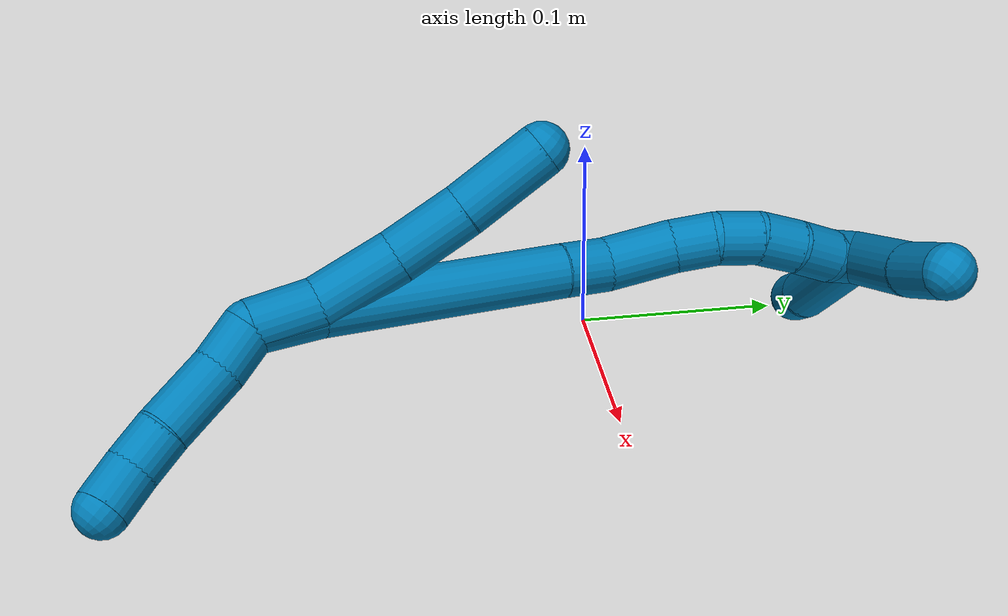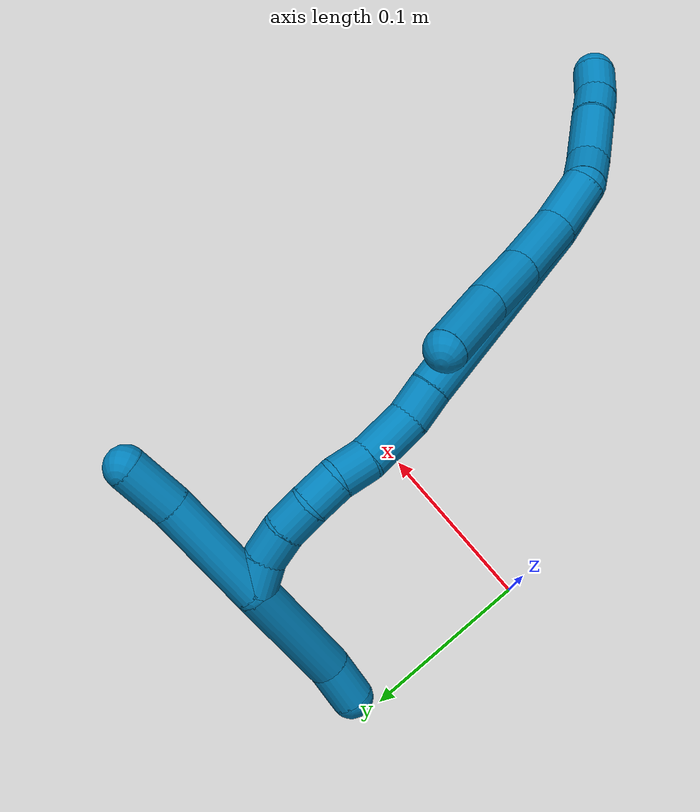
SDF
<sdf version="1.7">
 <world name="default">
  <model name="9">
   <static>0</static>
   <link name="9">
    <collision name="collision-cylinder-e_1_2_8">
     <pose>-0.006082 0.005342 0.013435 -0.37844 -0.398163 0.077238</pose>
     <geometry><cylinder><radius>0.0125</radius><length>0.031371</length></cylinder></geometry>
     <surface>
      <friction><ode><mu>1.16</mu><mu2>1.16</mu2><slip1>0</slip1><slip2>0</slip2></ode></friction>
      <contact><ode><kp>1e+06</kp><kd>1</kd><max_vel>0</max_vel><min_depth>0.001</min_depth></ode></contact>
     </surface>
    </collision>
    <visual name="visual-cylinder-e_1_2_8">
     <pose>-0.006082 0.005342 0.013435 -0.37844 -0.398163 0.077238</pose>
     <geometry><cylinder><radius>0.0125</radius><length>0.031371</length></cylinder></geometry>
     <material><ambient>0 0.490196 0.709804 1</ambient></material>
    </visual>
    <collision name="collision-cylinder-e_2_8_9">
     <pose>-0.013935 0.017314 0.045598 -0.340262 -0.08896 0.015292</pose>
     <geometry><cylinder><radius>0.0125</radius><length>0.03989</length></cylinder></geometry>
     <surface>
      <friction><ode><mu>1.16</mu><mu2>1.16</mu2><slip1>0</slip1><slip2>0</slip2></ode></friction>
      <contact><ode><kp>1e+06</kp><kd>1</kd><max_vel>0</max_vel><min_depth>0.001</min_depth></ode></contact>
     </surface>
    </collision>
    <visual name="visual-cylinder-e_2_8_9">
     <pose>-0.013935 0.017314 0.045598 -0.340262 -0.08896 0.015292</pose>
     <geometry><cylinder><radius>0.0125</radius><length>0.03989</length></cylinder></geometry>
     <material><ambient>0 0.490196 0.709804 1</ambient></material>
    </visual>
    <collision name="collision-cylinder-e_3_9_10">
     <pose>-0.015802 0.0299 0.081074 -0.341666 -0.00531 0.000916</pose>
     <geometry><cylinder><radius>0.0125</radius><length>0.035554</length></cylinder></geometry>
     <surface>
      <friction><ode><mu>1.16</mu><mu2>1.16</mu2><slip1>0</slip1><slip2>0</slip2></ode></friction>
      <contact><ode><kp>1e+06</kp><kd>1</kd><max_vel>0</max_vel><min_depth>0.001</min_depth></ode></contact>
     </surface>
    </collision>
    <visual name="visual-cylinder-e_3_9_10">
     <pose>-0.015802 0.0299 0.081074 -0.341666 -0.00531 0.000916</pose>
     <geometry><cylinder><radius>0.0125</radius><length>0.035554</length></cylinder></geometry>
     <material><ambient>0 0.490196 0.709804 1</ambient></material>
    </visual>
    <collision name="collision-cylinder-e_4_10_6">
     <pose>-0.015232 0.042127 0.118475 -0.294778 0.030767 -0.004568</pose>
     <geometry><cylinder><radius>0.0125</radius><length>0.043185</length></cylinder></geometry>
     <surface>
      <friction><ode><mu>1.16</mu><mu2>1.16</mu2><slip1>0</slip1><slip2>0</slip2></ode></friction>
      <contact><ode><kp>1e+06</kp><kd>1</kd><max_vel>0</max_vel><min_depth>0.001</min_depth></ode></contact>
     </surface>
    </collision>
    <visual name="visual-cylinder-e_4_10_6">
     <pose>-0.015232 0.042127 0.118475 -0.294778 0.030767 -0.004568</pose>
     <geometry><cylinder><radius>0.0125</radius><length>0.043185</length></cylinder></geometry>
     <material><ambient>0 0.490196 0.709804 1</ambient></material>
    </visual>
    <collision name="collision-cylinder-e_1_2_11">
     <pose>-0.000776 0.000504 -0.011164 -3.09644 -0.069366 1.98763</pose>
     <geometry><cylinder><radius>0.0125</radius><length>0.022404</length></cylinder></geometry>
     <surface>
      <friction><ode><mu>1.16</mu><mu2>1.16</mu2><slip1>0</slip1><slip2>0</slip2></ode></friction>
      <contact><ode><kp>1e+06</kp><kd>1</kd><max_vel>0</max_vel><min_depth>0.001</min_depth></ode></contact>
     </surface>
    </collision>
    <visual name="visual-cylinder-e_1_2_11">
     <pose>-0.000776 0.000504 -0.011164 -3.09644 -0.069366 1.98763</pose>
     <geometry><cylinder><radius>0.0125</radius><length>0.022404</length></cylinder></geometry>
     <material><ambient>0 0.490196 0.709804 1</ambient></material>
    </visual>
    <collision name="collision-cylinder-e_2_11_12">
     <pose>0.001242 0.002677 -0.039906 -3.04697 0.157001 -2.05797</pose>
     <geometry><cylinder><radius>0.0125</radius><length>0.035755</length></cylinder></geometry>
     <surface>
      <friction><ode><mu>1.16</mu><mu2>1.16</mu2><slip1>0</slip1><slip2>0</slip2></ode></friction>
      <contact><ode><kp>1e+06</kp><kd>1</kd><max_vel>0</max_vel><min_depth>0.001</min_depth></ode></contact>
     </surface>
    </collision>
    <visual name="visual-cylinder-e_2_11_12">
     <pose>0.001242 0.002677 -0.039906 -3.04697 0.157001 -2.05797</pose>
     <geometry><cylinder><radius>0.0125</radius><length>0.035755</length></cylinder></geometry>
     <material><ambient>0 0.490196 0.709804 1</ambient></material>
    </visual>
    <collision name="collision-cylinder-e_3_12_13">
     <pose>0.004496 0.005118 -0.067744 -3.06641 0.044528 -1.06919</pose>
     <geometry><cylinder><radius>0.0125</radius><length>0.020597</length></cylinder></geometry>
     <surface>
      <friction><ode><mu>1.16</mu><mu2>1.16</mu2><slip1>0</slip1><slip2>0</slip2></ode></friction>
      <contact><ode><kp>1e+06</kp><kd>1</kd><max_vel>0</max_vel><min_depth>0.001</min_depth></ode></contact>
     </surface>
    </collision>
    <visual name="visual-cylinder-e_3_12_13">
     <pose>0.004496 0.005118 -0.067744 -3.06641 0.044528 -1.06919</pose>
     <geometry><cylinder><radius>0.0125</radius><length>0.020597</length></cylinder></geometry>
     <material><ambient>0 0.490196 0.709804 1</ambient></material>
    </visual>
    <collision name="collision-cylinder-e_4_13_5">
     <pose>0.006371 0.00813 -0.088289 -2.92724 0.13379 -1.11386</pose>
     <geometry><cylinder><radius>0.0125</radius><length>0.021244</length></cylinder></geometry>
     <surface>
      <friction><ode><mu>1.16</mu><mu2>1.16</mu2><slip1>0</slip1><slip2>0</slip2></ode></friction>
      <contact><ode><kp>1e+06</kp><kd>1</kd><max_vel>0</max_vel><min_depth>0.001</min_depth></ode></contact>
     </surface>
    </collision>
    <visual name="visual-cylinder-e_4_13_5">
     <pose>0.006371 0.00813 -0.088289 -2.92724 0.13379 -1.11386</pose>
     <geometry><cylinder><radius>0.0125</radius><length>0.021244</length></cylinder></geometry>
     <material><ambient>0 0.490196 0.709804 1</ambient></material>
    </visual>
    <collision name="collision-cylinder-e_1_2_14">
     <pose>-0.007951 0.005282 0.013073 -0.383962 -0.513434 0.101962</pose>
     <geometry><cylinder><radius>0.0125</radius><length>0.032374</length></cylinder></geometry>
     <surface>
      <friction><ode><mu>1.16</mu><mu2>1.16</mu2><slip1>0</slip1><slip2>0</slip2></ode></friction>
      <contact><ode><kp>1e+06</kp><kd>1</kd><max_vel>0</max_vel><min_depth>0.001</min_depth></ode></contact>
     </surface>
    </collision>
    <visual name="visual-cylinder-e_1_2_14">
     <pose>-0.007951 0.005282 0.013073 -0.383962 -0.513434 0.101962</pose>
     <geometry><cylinder><radius>0.0125</radius><length>0.032374</length></cylinder></geometry>
     <material><ambient>0 0.490196 0.709804 1</ambient></material>
    </visual>
    <collision name="collision-cylinder-e_2_14_15">
     <pose>-0.043334 0.034532 0.069419 -0.505833 -0.506339 0.133535</pose>
     <geometry><cylinder><radius>0.0125</radius><length>0.113128</length></cylinder></geometry>
     <surface>
      <friction><ode><mu>1.16</mu><mu2>1.16</mu2><slip1>0</slip1><slip2>0</slip2></ode></friction>
      <contact><ode><kp>1e+06</kp><kd>1</kd><max_vel>0</max_vel><min_depth>0.001</min_depth></ode></contact>
     </surface>
    </collision>
    <visual name="visual-cylinder-e_2_14_15">
     <pose>-0.043334 0.034532 0.069419 -0.505833 -0.506339 0.133535</pose>
     <geometry><cylinder><radius>0.0125</radius><length>0.113128</length></cylinder></geometry>
     <material><ambient>0 0.490196 0.709804 1</ambient></material>
    </visual>
    <collision name="collision-cylinder-e_3_15_16">
     <pose>-0.076499 0.06265 0.12082 -0.471943 -0.560855 0.138287</pose>
     <geometry><cylinder><radius>0.0125</radius><length>0.021555</length></cylinder></geometry>
     <surface>
      <friction><ode><mu>1.16</mu><mu2>1.16</mu2><slip1>0</slip1><slip2>0</slip2></ode></friction>
      <contact><ode><kp>1e+06</kp><kd>1</kd><max_vel>0</max_vel><min_depth>0.001</min_depth></ode></contact>
     </surface>
    </collision>
    <visual name="visual-cylinder-e_3_15_16">
     <pose>-0.076499 0.06265 0.12082 -0.471943 -0.560855 0.138287</pose>
     <geometry><cylinder><radius>0.0125</radius><length>0.021555</length></cylinder></geometry>
     <material><ambient>0 0.490196 0.709804 1</ambient></material>
    </visual>
    <collision name="collision-cylinder-e_4_16_17">
     <pose>-0.087023 0.074872 0.142195 -0.547372 -0.299573 0.084683</pose>
     <geometry><cylinder><radius>0.0125</radius><length>0.032473</length></cylinder></geometry>
     <surface>
      <friction><ode><mu>1.16</mu><mu2>1.16</mu2><slip1>0</slip1><slip2>0</slip2></ode></friction>
      <contact><ode><kp>1e+06</kp><kd>1</kd><max_vel>0</max_vel><min_depth>0.001</min_depth></ode></contact>
     </surface>
    </collision>
    <visual name="visual-cylinder-e_4_16_17">
     <pose>-0.087023 0.074872 0.142195 -0.547372 -0.299573 0.084683</pose>
     <geometry><cylinder><radius>0.0125</radius><length>0.032473</length></cylinder></geometry>
     <material><ambient>0 0.490196 0.709804 1</ambient></material>
    </visual>
    <collision name="collision-cylinder-e_5_17_18">
     <pose>-0.09391 0.089466 0.16285 -0.721711 -0.209211 0.0792</pose>
     <geometry><cylinder><radius>0.0125</radius><length>0.020177</length></cylinder></geometry>
     <surface>
      <friction><ode><mu>1.16</mu><mu2>1.16</mu2><slip1>0</slip1><slip2>0</slip2></ode></friction>
      <contact><ode><kp>1e+06</kp><kd>1</kd><max_vel>0</max_vel><min_depth>0.001</min_depth></ode></contact>
     </surface>
    </collision>
    <visual name="visual-cylinder-e_5_17_18">
     <pose>-0.09391 0.089466 0.16285 -0.721711 -0.209211 0.0792</pose>
     <geometry><cylinder><radius>0.0125</radius><length>0.020177</length></cylinder></geometry>
     <material><ambient>0 0.490196 0.709804 1</ambient></material>
    </visual>
    <collision name="collision-cylinder-e_6_18_19">
     <pose>-0.100929 0.101608 0.176953 -0.698527 -0.512929 0.190434</pose>
     <geometry><cylinder><radius>0.0125</radius><length>0.020067</length></cylinder></geometry>
     <surface>
      <friction><ode><mu>1.16</mu><mu2>1.16</mu2><slip1>0</slip1><slip2>0</slip2></ode></friction>
      <contact><ode><kp>1e+06</kp><kd>1</kd><max_vel>0</max_vel><min_depth>0.001</min_depth></ode></contact>
     </surface>
    </collision>
    <visual name="visual-cylinder-e_6_18_19">
     <pose>-0.100929 0.101608 0.176953 -0.698527 -0.512929 0.190434</pose>
     <geometry><cylinder><radius>0.0125</radius><length>0.020067</length></cylinder></geometry>
     <material><ambient>0 0.490196 0.709804 1</ambient></material>
    </visual>
    <collision name="collision-cylinder-e_7_19_20">
     <pose>-0.112533 0.112835 0.188687 -0.838502 -0.725194 0.334984</pose>
     <geometry><cylinder><radius>0.0125</radius><length>0.020141</length></cylinder></geometry>
     <surface>
      <friction><ode><mu>1.16</mu><mu2>1.16</mu2><slip1>0</slip1><slip2>0</slip2></ode></friction>
      <contact><ode><kp>1e+06</kp><kd>1</kd><max_vel>0</max_vel><min_depth>0.001</min_depth></ode></contact>
     </surface>
    </collision>
    <visual name="visual-cylinder-e_7_19_20">
     <pose>-0.112533 0.112835 0.188687 -0.838502 -0.725194 0.334984</pose>
     <geometry><cylinder><radius>0.0125</radius><length>0.020141</length></cylinder></geometry>
     <material><ambient>0 0.490196 0.709804 1</ambient></material>
    </visual>
    <collision name="collision-cylinder-e_8_20_21">
     <pose>-0.127031 0.122526 0.198519 -0.705931 -0.892632 0.348981</pose>
     <geometry><cylinder><radius>0.0125</radius><length>0.02008</length></cylinder></geometry>
     <surface>
      <friction><ode><mu>1.16</mu><mu2>1.16</mu2><slip1>0</slip1><slip2>0</slip2></ode></friction>
      <contact><ode><kp>1e+06</kp><kd>1</kd><max_vel>0</max_vel><min_depth>0.001</min_depth></ode></contact>
     </surface>
    </collision>
    <visual name="visual-cylinder-e_8_20_21">
     <pose>-0.127031 0.122526 0.198519 -0.705931 -0.892632 0.348981</pose>
     <geometry><cylinder><radius>0.0125</radius><length>0.02008</length></cylinder></geometry>
     <material><ambient>0 0.490196 0.709804 1</ambient></material>
    </visual>
    <collision name="collision-cylinder-e_9_21_1">
     <pose>-0.14295 0.12775 0.209067 -0.1953 -0.944086 0.099943</pose>
     <geometry><cylinder><radius>0.0125</radius><length>0.020004</length></cylinder></geometry>
     <surface>
      <friction><ode><mu>1.16</mu><mu2>1.16</mu2><slip1>0</slip1><slip2>0</slip2></ode></friction>
      <contact><ode><kp>1e+06</kp><kd>1</kd><max_vel>0</max_vel><min_depth>0.001</min_depth></ode></contact>
     </surface>
    </collision>
    <visual name="visual-cylinder-e_9_21_1">
     <pose>-0.14295 0.12775 0.209067 -0.1953 -0.944086 0.099943</pose>
     <geometry><cylinder><radius>0.0125</radius><length>0.020004</length></cylinder></geometry>
     <material><ambient>0 0.490196 0.709804 1</ambient></material>
    </visual>
    <collision name="collision-cylinder-e_1_1_22">
     <pose>-0.129309 0.153781 0.209631 -1.77635 0.707434 -0.852643</pose>
     <geometry><cylinder><radius>0.0125</radius><length>0.066911</length></cylinder></geometry>
     <surface>
      <friction><ode><mu>1.16</mu><mu2>1.16</mu2><slip1>0</slip1><slip2>0</slip2></ode></friction>
      <contact><ode><kp>1e+06</kp><kd>1</kd><max_vel>0</max_vel><min_depth>0.001</min_depth></ode></contact>
     </surface>
    </collision>
    <visual name="visual-cylinder-e_1_1_22">
     <pose>-0.129309 0.153781 0.209631 -1.77635 0.707434 -0.852643</pose>
     <geometry><cylinder><radius>0.0125</radius><length>0.066911</length></cylinder></geometry>
     <material><ambient>0 0.490196 0.709804 1</ambient></material>
    </visual>
    <collision name="collision-cylinder-e_2_22_4">
     <pose>-0.096899 0.191291 0.203606 -1.63691 0.700767 -0.744511</pose>
     <geometry><cylinder><radius>0.0125</radius><length>0.033089</length></cylinder></geometry>
     <surface>
      <friction><ode><mu>1.16</mu><mu2>1.16</mu2><slip1>0</slip1><slip2>0</slip2></ode></friction>
      <contact><ode><kp>1e+06</kp><kd>1</kd><max_vel>0</max_vel><min_depth>0.001</min_depth></ode></contact>
     </surface>
    </collision>
    <visual name="visual-cylinder-e_2_22_4">
     <pose>-0.096899 0.191291 0.203606 -1.63691 0.700767 -0.744511</pose>
     <geometry><cylinder><radius>0.0125</radius><length>0.033089</length></cylinder></geometry>
     <material><ambient>0 0.490196 0.709804 1</ambient></material>
    </visual>
    <collision name="collision-cylinder-e_1_1_23">
     <pose>-0.181165 0.107871 0.211922 1.70786 -0.957019 -1.07373</pose>
     <geometry><cylinder><radius>0.0125</radius><length>0.073674</length></cylinder></geometry>
     <surface>
      <friction><ode><mu>1.16</mu><mu2>1.16</mu2><slip1>0</slip1><slip2>0</slip2></ode></friction>
      <contact><ode><kp>1e+06</kp><kd>1</kd><max_vel>0</max_vel><min_depth>0.001</min_depth></ode></contact>
     </surface>
    </collision>
    <visual name="visual-cylinder-e_1_1_23">
     <pose>-0.181165 0.107871 0.211922 1.70786 -0.957019 -1.07373</pose>
     <geometry><cylinder><radius>0.0125</radius><length>0.073674</length></cylinder></geometry>
     <material><ambient>0 0.490196 0.709804 1</ambient></material>
    </visual>
    <collision name="collision-cylinder-e_2_23_3">
     <pose>-0.221782 0.079061 0.210513 1.38191 -0.923909 -0.781143</pose>
     <geometry><cylinder><radius>0.0125</radius><length>0.026326</length></cylinder></geometry>
     <surface>
      <friction><ode><mu>1.16</mu><mu2>1.16</mu2><slip1>0</slip1><slip2>0</slip2></ode></friction>
      <contact><ode><kp>1e+06</kp><kd>1</kd><max_vel>0</max_vel><min_depth>0.001</min_depth></ode></contact>
     </surface>
    </collision>
    <visual name="visual-cylinder-e_2_23_3">
     <pose>-0.221782 0.079061 0.210513 1.38191 -0.923909 -0.781143</pose>
     <geometry><cylinder><radius>0.0125</radius><length>0.026326</length></cylinder></geometry>
     <material><ambient>0 0.490196 0.709804 1</ambient></material>
    </visual>
    <collision name="collision-sphere-3">
     <pose>-0.232285 0.071269 0.212002 0 -0 0</pose>
     <geometry><sphere><radius>0.0125</radius></sphere></geometry>
     <surface>
      <friction><ode><mu>1.16</mu><mu2>1.16</mu2><slip1>0</slip1><slip2>0</slip2></ode></friction>
      <contact><ode><kp>1e+06</kp><kd>1</kd><max_vel>0</max_vel><min_depth>0.001</min_depth></ode></contact>
     </surface>
    </collision>
    <visual name="visual-sphere-3">
     <pose>-0.232285 0.071269 0.212002 0 -0 0</pose>
     <geometry><sphere><radius>0.0125</radius></sphere></geometry>
     <material><ambient>0 0.490196 0.709804 1</ambient></material>
    </visual>
    <collision name="collision-sphere-23">
     <pose>-0.211278 0.086854 0.209023 0 -0 0</pose>
     <geometry><sphere><radius>0.0125</radius></sphere></geometry>
     <surface>
      <friction><ode><mu>1.16</mu><mu2>1.16</mu2><slip1>0</slip1><slip2>0</slip2></ode></friction>
      <contact><ode><kp>1e+06</kp><kd>1</kd><max_vel>0</max_vel><min_depth>0.001</min_depth></ode></contact>
     </surface>
    </collision>
    <visual name="visual-sphere-23">
     <pose>-0.211278 0.086854 0.209023 0 -0 0</pose>
     <geometry><sphere><radius>0.0125</radius></sphere></geometry>
     <material><ambient>0 0.490196 0.709804 1</ambient></material>
    </visual>
    <collision name="collision-sphere-4">
     <pose>-0.086231 0.203909 0.20277 0 -0 0</pose>
     <geometry><sphere><radius>0.0125</radius></sphere></geometry>
     <surface>
      <friction><ode><mu>1.16</mu><mu2>1.16</mu2><slip1>0</slip1><slip2>0</slip2></ode></friction>
      <contact><ode><kp>1e+06</kp><kd>1</kd><max_vel>0</max_vel><min_depth>0.001</min_depth></ode></contact>
     </surface>
    </collision>
    <visual name="visual-sphere-4">
     <pose>-0.086231 0.203909 0.20277 0 -0 0</pose>
     <geometry><sphere><radius>0.0125</radius></sphere></geometry>
     <material><ambient>0 0.490196 0.709804 1</ambient></material>
    </visual>
    <collision name="collision-sphere-22">
     <pose>-0.107567 0.178673 0.204441 0 -0 0</pose>
     <geometry><sphere><radius>0.0125</radius></sphere></geometry>
     <surface>
      <friction><ode><mu>1.16</mu><mu2>1.16</mu2><slip1>0</slip1><slip2>0</slip2></ode></friction>
      <contact><ode><kp>1e+06</kp><kd>1</kd><max_vel>0</max_vel><min_depth>0.001</min_depth></ode></contact>
     </surface>
    </collision>
    <visual name="visual-sphere-22">
     <pose>-0.107567 0.178673 0.204441 0 -0 0</pose>
     <geometry><sphere><radius>0.0125</radius></sphere></geometry>
     <material><ambient>0 0.490196 0.709804 1</ambient></material>
    </visual>
    <collision name="collision-sphere-1">
     <pose>-0.151051 0.128889 0.214821 0 -0 0</pose>
     <geometry><sphere><radius>0.0125</radius></sphere></geometry>
     <surface>
      <friction><ode><mu>1.16</mu><mu2>1.16</mu2><slip1>0</slip1><slip2>0</slip2></ode></friction>
      <contact><ode><kp>1e+06</kp><kd>1</kd><max_vel>0</max_vel><min_depth>0.001</min_depth></ode></contact>
     </surface>
    </collision>
    <visual name="visual-sphere-1">
     <pose>-0.151051 0.128889 0.214821 0 -0 0</pose>
     <geometry><sphere><radius>0.0125</radius></sphere></geometry>
     <material><ambient>0 0.490196 0.709804 1</ambient></material>
    </visual>
    <collision name="collision-sphere-21">
     <pose>-0.134849 0.126612 0.203312 0 -0 0</pose>
     <geometry><sphere><radius>0.0125</radius></sphere></geometry>
     <surface>
      <friction><ode><mu>1.16</mu><mu2>1.16</mu2><slip1>0</slip1><slip2>0</slip2></ode></friction>
      <contact><ode><kp>1e+06</kp><kd>1</kd><max_vel>0</max_vel><min_depth>0.001</min_depth></ode></contact>
     </surface>
    </collision>
    <visual name="visual-sphere-21">
     <pose>-0.134849 0.126612 0.203312 0 -0 0</pose>
     <geometry><sphere><radius>0.0125</radius></sphere></geometry>
     <material><ambient>0 0.490196 0.709804 1</ambient></material>
    </visual>
    <collision name="collision-sphere-11">
     <pose>-0.001553 0.001009 -0.022328 0 -0 0</pose>
     <geometry><sphere><radius>0.0125</radius></sphere></geometry>
     <surface>
      <friction><ode><mu>1.16</mu><mu2>1.16</mu2><slip1>0</slip1><slip2>0</slip2></ode></friction>
      <contact><ode><kp>1e+06</kp><kd>1</kd><max_vel>0</max_vel><min_depth>0.001</min_depth></ode></contact>
     </surface>
    </collision>
    <visual name="visual-sphere-11">
     <pose>-0.001553 0.001009 -0.022328 0 -0 0</pose>
     <geometry><sphere><radius>0.0125</radius></sphere></geometry>
     <material><ambient>0 0.490196 0.709804 1</ambient></material>
    </visual>
    <collision name="collision-sphere-6">
     <pose>-0.014568 0.048397 0.139126 0 -0 0</pose>
     <geometry><sphere><radius>0.0125</radius></sphere></geometry>
     <surface>
      <friction><ode><mu>1.16</mu><mu2>1.16</mu2><slip1>0</slip1><slip2>0</slip2></ode></friction>
      <contact><ode><kp>1e+06</kp><kd>1</kd><max_vel>0</max_vel><min_depth>0.001</min_depth></ode></contact>
     </surface>
    </collision>
    <visual name="visual-sphere-6">
     <pose>-0.014568 0.048397 0.139126 0 -0 0</pose>
     <geometry><sphere><radius>0.0125</radius></sphere></geometry>
     <material><ambient>0 0.490196 0.709804 1</ambient></material>
    </visual>
    <collision name="collision-sphere-10">
     <pose>-0.015896 0.035856 0.097824 0 -0 0</pose>
     <geometry><sphere><radius>0.0125</radius></sphere></geometry>
     <surface>
      <friction><ode><mu>1.16</mu><mu2>1.16</mu2><slip1>0</slip1><slip2>0</slip2></ode></friction>
      <contact><ode><kp>1e+06</kp><kd>1</kd><max_vel>0</max_vel><min_depth>0.001</min_depth></ode></contact>
     </surface>
    </collision>
    <visual name="visual-sphere-10">
     <pose>-0.015896 0.035856 0.097824 0 -0 0</pose>
     <geometry><sphere><radius>0.0125</radius></sphere></geometry>
     <material><ambient>0 0.490196 0.709804 1</ambient></material>
    </visual>
    <collision name="collision-sphere-9">
     <pose>-0.015707 0.023944 0.064325 0 -0 0</pose>
     <geometry><sphere><radius>0.0125</radius></sphere></geometry>
     <surface>
      <friction><ode><mu>1.16</mu><mu2>1.16</mu2><slip1>0</slip1><slip2>0</slip2></ode></friction>
      <contact><ode><kp>1e+06</kp><kd>1</kd><max_vel>0</max_vel><min_depth>0.001</min_depth></ode></contact>
     </surface>
    </collision>
    <visual name="visual-sphere-9">
     <pose>-0.015707 0.023944 0.064325 0 -0 0</pose>
     <geometry><sphere><radius>0.0125</radius></sphere></geometry>
     <material><ambient>0 0.490196 0.709804 1</ambient></material>
    </visual>
    <collision name="collision-sphere-2">
     <geometry><sphere><radius>0.0125</radius></sphere></geometry>
     <surface>
      <friction><ode><mu>1.16</mu><mu2>1.16</mu2><slip1>0</slip1><slip2>0</slip2></ode></friction>
      <contact><ode><kp>1e+06</kp><kd>1</kd><max_vel>0</max_vel><min_depth>0.001</min_depth></ode></contact>
     </surface>
    </collision>
    <visual name="visual-sphere-2">
     <geometry><sphere><radius>0.0125</radius></sphere></geometry>
     <material><ambient>0 0.490196 0.709804 1</ambient></material>
    </visual>
    <collision name="collision-sphere-19">
     <pose>-0.105853 0.10723 0.183648 0 -0 0</pose>
     <geometry><sphere><radius>0.0125</radius></sphere></geometry>
     <surface>
      <friction><ode><mu>1.16</mu><mu2>1.16</mu2><slip1>0</slip1><slip2>0</slip2></ode></friction>
      <contact><ode><kp>1e+06</kp><kd>1</kd><max_vel>0</max_vel><min_depth>0.001</min_depth></ode></contact>
     </surface>
    </collision>
    <visual name="visual-sphere-19">
     <pose>-0.105853 0.10723 0.183648 0 -0 0</pose>
     <geometry><sphere><radius>0.0125</radius></sphere></geometry>
     <material><ambient>0 0.490196 0.709804 1</ambient></material>
    </visual>
    <collision name="collision-sphere-8">
     <pose>-0.012163 0.010684 0.026871 0 -0 0</pose>
     <geometry><sphere><radius>0.0125</radius></sphere></geometry>
     <surface>
      <friction><ode><mu>1.16</mu><mu2>1.16</mu2><slip1>0</slip1><slip2>0</slip2></ode></friction>
      <contact><ode><kp>1e+06</kp><kd>1</kd><max_vel>0</max_vel><min_depth>0.001</min_depth></ode></contact>
     </surface>
    </collision>
    <visual name="visual-sphere-8">
     <pose>-0.012163 0.010684 0.026871 0 -0 0</pose>
     <geometry><sphere><radius>0.0125</radius></sphere></geometry>
     <material><ambient>0 0.490196 0.709804 1</ambient></material>
    </visual>
    <collision name="collision-sphere-12">
     <pose>0.004038 0.004346 -0.057485 0 -0 0</pose>
     <geometry><sphere><radius>0.0125</radius></sphere></geometry>
     <surface>
      <friction><ode><mu>1.16</mu><mu2>1.16</mu2><slip1>0</slip1><slip2>0</slip2></ode></friction>
      <contact><ode><kp>1e+06</kp><kd>1</kd><max_vel>0</max_vel><min_depth>0.001</min_depth></ode></contact>
     </surface>
    </collision>
    <visual name="visual-sphere-12">
     <pose>0.004038 0.004346 -0.057485 0 -0 0</pose>
     <geometry><sphere><radius>0.0125</radius></sphere></geometry>
     <material><ambient>0 0.490196 0.709804 1</ambient></material>
    </visual>
    <collision name="collision-sphere-13">
     <pose>0.004955 0.005891 -0.078003 0 -0 0</pose>
     <geometry><sphere><radius>0.0125</radius></sphere></geometry>
     <surface>
      <friction><ode><mu>1.16</mu><mu2>1.16</mu2><slip1>0</slip1><slip2>0</slip2></ode></friction>
      <contact><ode><kp>1e+06</kp><kd>1</kd><max_vel>0</max_vel><min_depth>0.001</min_depth></ode></contact>
     </surface>
    </collision>
    <visual name="visual-sphere-13">
     <pose>0.004955 0.005891 -0.078003 0 -0 0</pose>
     <geometry><sphere><radius>0.0125</radius></sphere></geometry>
     <material><ambient>0 0.490196 0.709804 1</ambient></material>
    </visual>
    <collision name="collision-sphere-5">
     <pose>0.007788 0.01037 -0.098575 0 -0 0</pose>
     <geometry><sphere><radius>0.0125</radius></sphere></geometry>
     <surface>
      <friction><ode><mu>1.16</mu><mu2>1.16</mu2><slip1>0</slip1><slip2>0</slip2></ode></friction>
      <contact><ode><kp>1e+06</kp><kd>1</kd><max_vel>0</max_vel><min_depth>0.001</min_depth></ode></contact>
     </surface>
    </collision>
    <visual name="visual-sphere-5">
     <pose>0.007788 0.01037 -0.098575 0 -0 0</pose>
     <geometry><sphere><radius>0.0125</radius></sphere></geometry>
     <material><ambient>0 0.490196 0.709804 1</ambient></material>
    </visual>
    <collision name="collision-sphere-14">
     <pose>-0.015901 0.010564 0.026147 0 -0 0</pose>
     <geometry><sphere><radius>0.0125</radius></sphere></geometry>
     <surface>
      <friction><ode><mu>1.16</mu><mu2>1.16</mu2><slip1>0</slip1><slip2>0</slip2></ode></friction>
      <contact><ode><kp>1e+06</kp><kd>1</kd><max_vel>0</max_vel><min_depth>0.001</min_depth></ode></contact>
     </surface>
    </collision>
    <visual name="visual-sphere-14">
     <pose>-0.015901 0.010564 0.026147 0 -0 0</pose>
     <geometry><sphere><radius>0.0125</radius></sphere></geometry>
     <material><ambient>0 0.490196 0.709804 1</ambient></material>
    </visual>
    <collision name="collision-sphere-15">
     <pose>-0.070766 0.058501 0.112691 0 -0 0</pose>
     <geometry><sphere><radius>0.0125</radius></sphere></geometry>
     <surface>
      <friction><ode><mu>1.16</mu><mu2>1.16</mu2><slip1>0</slip1><slip2>0</slip2></ode></friction>
      <contact><ode><kp>1e+06</kp><kd>1</kd><max_vel>0</max_vel><min_depth>0.001</min_depth></ode></contact>
     </surface>
    </collision>
    <visual name="visual-sphere-15">
     <pose>-0.070766 0.058501 0.112691 0 -0 0</pose>
     <geometry><sphere><radius>0.0125</radius></sphere></geometry>
     <material><ambient>0 0.490196 0.709804 1</ambient></material>
    </visual>
    <collision name="collision-sphere-16">
     <pose>-0.082231 0.066799 0.128948 0 -0 0</pose>
     <geometry><sphere><radius>0.0125</radius></sphere></geometry>
     <surface>
      <friction><ode><mu>1.16</mu><mu2>1.16</mu2><slip1>0</slip1><slip2>0</slip2></ode></friction>
      <contact><ode><kp>1e+06</kp><kd>1</kd><max_vel>0</max_vel><min_depth>0.001</min_depth></ode></contact>
     </surface>
    </collision>
    <visual name="visual-sphere-16">
     <pose>-0.082231 0.066799 0.128948 0 -0 0</pose>
     <geometry><sphere><radius>0.0125</radius></sphere></geometry>
     <material><ambient>0 0.490196 0.709804 1</ambient></material>
    </visual>
    <collision name="collision-sphere-17">
     <pose>-0.091815 0.082946 0.155442 0 -0 0</pose>
     <geometry><sphere><radius>0.0125</radius></sphere></geometry>
     <surface>
      <friction><ode><mu>1.16</mu><mu2>1.16</mu2><slip1>0</slip1><slip2>0</slip2></ode></friction>
      <contact><ode><kp>1e+06</kp><kd>1</kd><max_vel>0</max_vel><min_depth>0.001</min_depth></ode></contact>
     </surface>
    </collision>
    <visual name="visual-sphere-17">
     <pose>-0.091815 0.082946 0.155442 0 -0 0</pose>
     <geometry><sphere><radius>0.0125</radius></sphere></geometry>
     <material><ambient>0 0.490196 0.709804 1</ambient></material>
    </visual>
    <collision name="collision-sphere-18">
     <pose>-0.096005 0.095986 0.170258 0 -0 0</pose>
     <geometry><sphere><radius>0.0125</radius></sphere></geometry>
     <surface>
      <friction><ode><mu>1.16</mu><mu2>1.16</mu2><slip1>0</slip1><slip2>0</slip2></ode></friction>
      <contact><ode><kp>1e+06</kp><kd>1</kd><max_vel>0</max_vel><min_depth>0.001</min_depth></ode></contact>
     </surface>
    </collision>
    <visual name="visual-sphere-18">
     <pose>-0.096005 0.095986 0.170258 0 -0 0</pose>
     <geometry><sphere><radius>0.0125</radius></sphere></geometry>
     <material><ambient>0 0.490196 0.709804 1</ambient></material>
    </visual>
    <collision name="collision-sphere-20">
     <pose>-0.119212 0.118439 0.193726 0 -0 0</pose>
     <geometry><sphere><radius>0.0125</radius></sphere></geometry>
     <surface>
      <friction><ode><mu>1.16</mu><mu2>1.16</mu2><slip1>0</slip1><slip2>0</slip2></ode></friction>
      <contact><ode><kp>1e+06</kp><kd>1</kd><max_vel>0</max_vel><min_depth>0.001</min_depth></ode></contact>
     </surface>
    </collision>
    <visual name="visual-sphere-20">
     <pose>-0.119212 0.118439 0.193726 0 -0 0</pose>
     <geometry><sphere><radius>0.0125</radius></sphere></geometry>
     <material><ambient>0 0.490196 0.709804 1</ambient></material>
    </visual>
    <inertial>
     <pose>-0.071983 0.066354 0.108685 0 -0 0</pose>
     <mass>0.75</mass>
     <inertia>
      <ixx>0.000132</ixx>
      <ixy>0</ixy>
      <ixz>0</ixz>
      <iyy>0.000178</iyy>
      <iyz>0</iyz>
      <izz>2.9e-05</izz>
     </inertia>
    </inertial>
   </link>
   <pose>0.142701 -0.172762 0.093372 -0.167384 -0.975964 -0.794956</pose>
  </model>
 </world>
</sdf>
